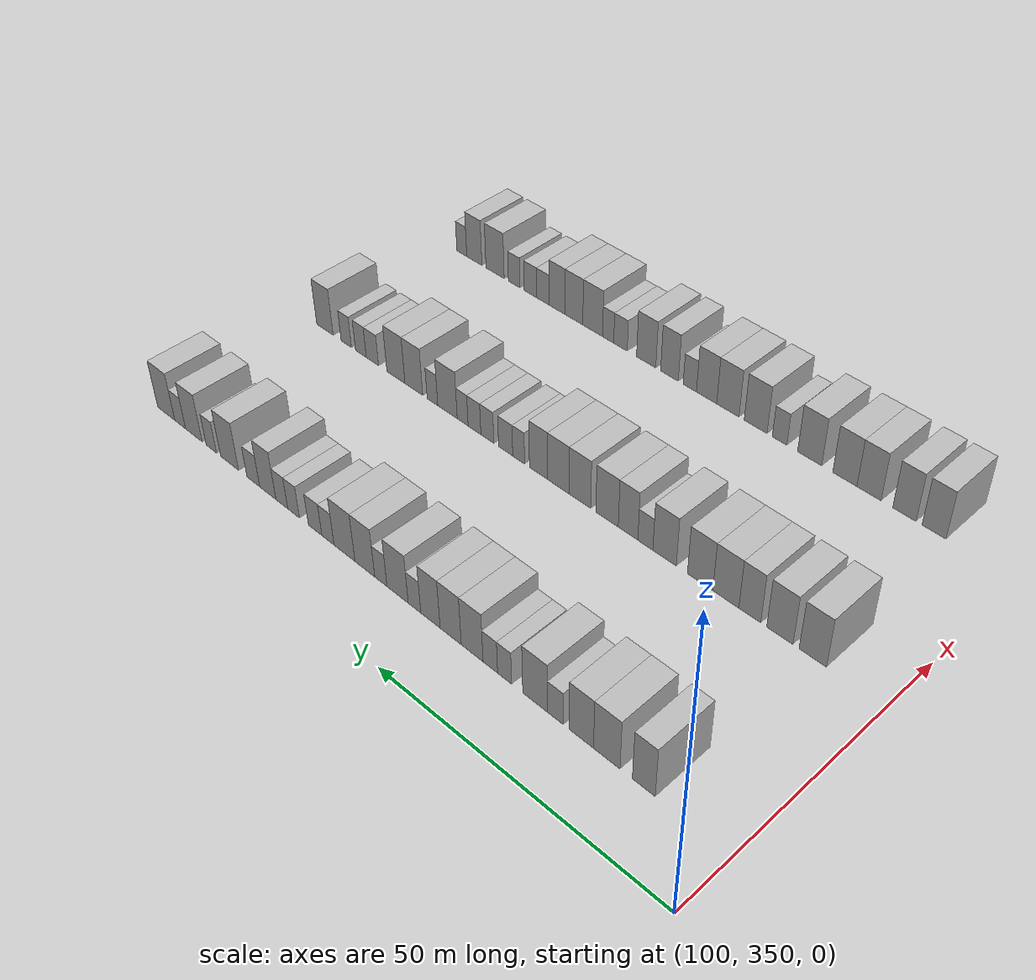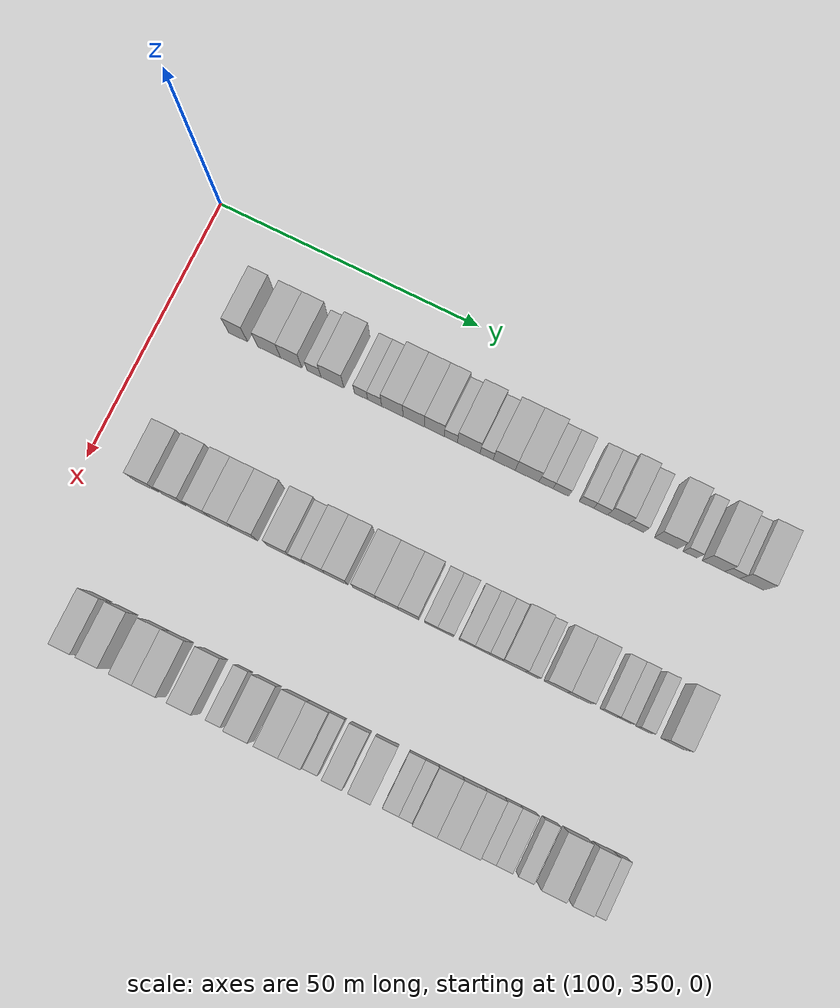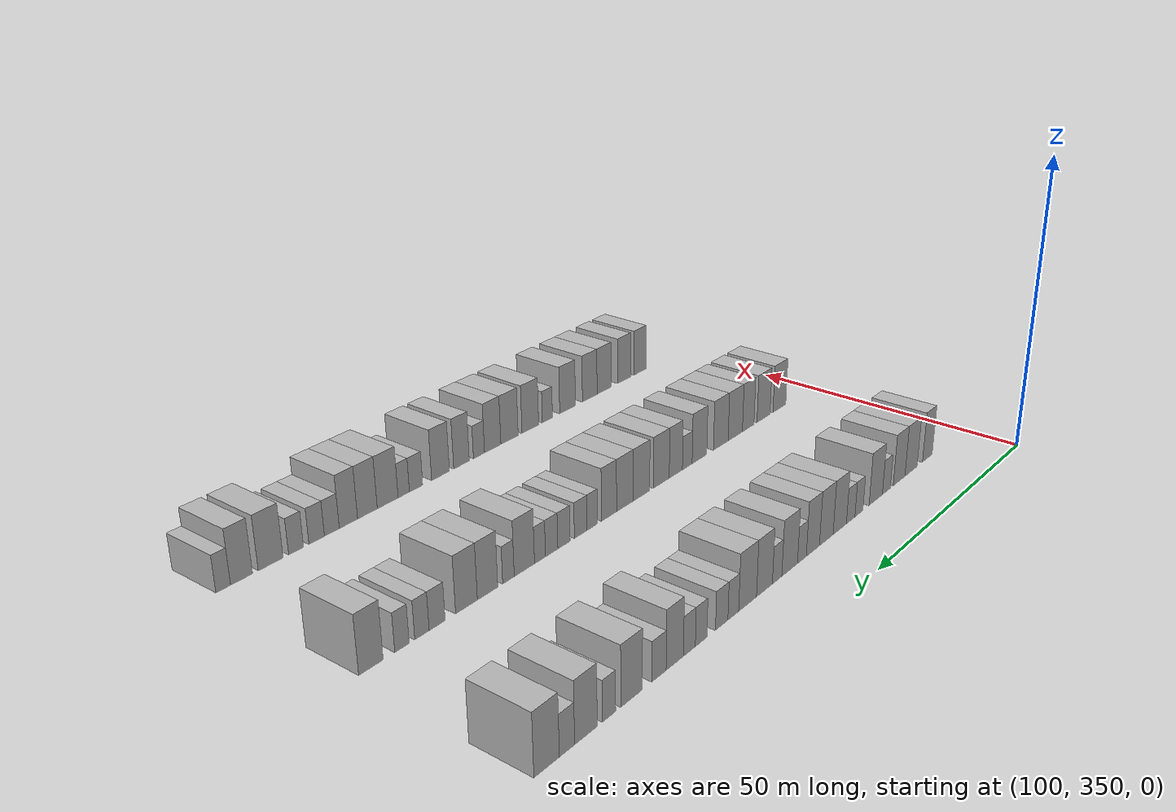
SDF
<sdf version="1.6">
 <world name="default">
  <model name="building_876">
   <static>1</static>
   <pose>115.0000 363.5925 0 0.000000 0.000000 0.000000</pose>
   <link name="link">
    <pose>0 0 4.50 0 0 0</pose>
    <collision name="collision"><geometry><box><size>10.0000 3.6463 9.0000</size></box></geometry></collision>
    <visual name="visual">
     <cast_shadows>0</cast_shadows>
     <geometry><box><size>10.0000 3.6463 9.0000</size></box></geometry>
     <material>
      <script>
       <uri>model://HANNAS_wall/materials/scripts</uri>
       <uri>model://HANNAS_wall/materials/textures</uri>
       <name>vrc/HANNAS_wall</name>
      </script>
     </material>
    </visual>
   </link>
  </model>
  <model name="building_877">
   <static>1</static>
   <pose>115.0000 369.5998 0 0.000000 0.000000 0.000000</pose>
   <link name="link">
    <pose>0 0 4.50 0 0 0</pose>
    <collision name="collision"><geometry><box><size>10.0000 4.3685 9.0000</size></box></geometry></collision>
    <visual name="visual">
     <cast_shadows>0</cast_shadows>
     <geometry><box><size>10.0000 4.3685 9.0000</size></box></geometry>
     <material>
      <script>
       <uri>model://HANNAS_wall/materials/scripts</uri>
       <uri>model://HANNAS_wall/materials/textures</uri>
       <name>vrc/HANNAS_wall</name>
      </script>
     </material>
    </visual>
   </link>
  </model>
  <model name="building_878">
   <static>1</static>
   <pose>115.0000 373.8385 0 0.000000 0.000000 0.000000</pose>
   <link name="link">
    <pose>0 0 4.50 0 0 0</pose>
    <collision name="collision"><geometry><box><size>10.0000 4.1087 9.0000</size></box></geometry></collision>
    <visual name="visual">
     <cast_shadows>0</cast_shadows>
     <geometry><box><size>10.0000 4.1087 9.0000</size></box></geometry>
     <material>
      <script>
       <uri>model://HANNAS_wall/materials/scripts</uri>
       <uri>model://HANNAS_wall/materials/textures</uri>
       <name>vrc/HANNAS_wall</name>
      </script>
     </material>
    </visual>
   </link>
  </model>
  <model name="building_879">
   <static>1</static>
   <pose>115.0000 378.2415 0 0.000000 0.000000 0.000000</pose>
   <link name="link">
    <pose>0 0 3.00 0 0 0</pose>
    <collision name="collision"><geometry><box><size>10.0000 2.6974 6.0000</size></box></geometry></collision>
    <visual name="visual">
     <cast_shadows>0</cast_shadows>
     <geometry><box><size>10.0000 2.6974 6.0000</size></box></geometry>
     <material>
      <script>
       <uri>model://HANNAS_wall/materials/scripts</uri>
       <uri>model://HANNAS_wall/materials/textures</uri>
       <name>vrc/HANNAS_wall</name>
      </script>
     </material>
    </visual>
   </link>
  </model>
  <model name="building_880">
   <static>1</static>
   <pose>115.0000 381.7864 0 0.000000 0.000000 0.000000</pose>
   <link name="link">
    <pose>0 0 4.50 0 0 0</pose>
    <collision name="collision"><geometry><box><size>10.0000 4.3923 9.0000</size></box></geometry></collision>
    <visual name="visual">
     <cast_shadows>0</cast_shadows>
     <geometry><box><size>10.0000 4.3923 9.0000</size></box></geometry>
     <material>
      <script>
       <uri>model://HANNAS_wall/materials/scripts</uri>
       <uri>model://HANNAS_wall/materials/textures</uri>
       <name>vrc/HANNAS_wall</name>
      </script>
     </material>
    </visual>
   </link>
  </model>
  <model name="building_881">
   <static>1</static>
   <pose>115.0000 387.2542 0 0.000000 0.000000 0.000000</pose>
   <link name="link">
    <pose>0 0 3.00 0 0 0</pose>
    <collision name="collision"><geometry><box><size>10.0000 2.5434 6.0000</size></box></geometry></collision>
    <visual name="visual">
     <cast_shadows>0</cast_shadows>
     <geometry><box><size>10.0000 2.5434 6.0000</size></box></geometry>
     <material>
      <script>
       <uri>model://HANNAS_wall/materials/scripts</uri>
       <uri>model://HANNAS_wall/materials/textures</uri>
       <name>vrc/HANNAS_wall</name>
      </script>
     </material>
    </visual>
   </link>
  </model>
  <model name="building_882">
   <static>1</static>
   <pose>115.0000 389.8572 0 0.000000 0.000000 0.000000</pose>
   <link name="link">
    <pose>0 0 3.00 0 0 0</pose>
    <collision name="collision"><geometry><box><size>10.0000 2.6627 6.0000</size></box></geometry></collision>
    <visual name="visual">
     <cast_shadows>0</cast_shadows>
     <geometry><box><size>10.0000 2.6627 6.0000</size></box></geometry>
     <material>
      <script>
       <uri>model://HANNAS_wall/materials/scripts</uri>
       <uri>model://HANNAS_wall/materials/textures</uri>
       <name>vrc/HANNAS_wall</name>
      </script>
     </material>
    </visual>
   </link>
  </model>
  <model name="building_883">
   <static>1</static>
   <pose>115.0000 393.2285 0 0.000000 0.000000 0.000000</pose>
   <link name="link">
    <pose>0 0 4.50 0 0 0</pose>
    <collision name="collision"><geometry><box><size>10.0000 4.0799 9.0000</size></box></geometry></collision>
    <visual name="visual">
     <cast_shadows>0</cast_shadows>
     <geometry><box><size>10.0000 4.0799 9.0000</size></box></geometry>
     <material>
      <script>
       <uri>model://HANNAS_wall/materials/scripts</uri>
       <uri>model://HANNAS_wall/materials/textures</uri>
       <name>vrc/HANNAS_wall</name>
      </script>
     </material>
    </visual>
   </link>
  </model>
  <model name="building_884">
   <static>1</static>
   <pose>115.0000 397.2960 0 0.000000 0.000000 0.000000</pose>
   <link name="link">
    <pose>0 0 4.50 0 0 0</pose>
    <collision name="collision"><geometry><box><size>10.0000 4.0551 9.0000</size></box></geometry></collision>
    <visual name="visual">
     <cast_shadows>0</cast_shadows>
     <geometry><box><size>10.0000 4.0551 9.0000</size></box></geometry>
     <material>
      <script>
       <uri>model://HANNAS_wall/materials/scripts</uri>
       <uri>model://HANNAS_wall/materials/textures</uri>
       <name>vrc/HANNAS_wall</name>
      </script>
     </material>
    </visual>
   </link>
  </model>
  <model name="building_885">
   <static>1</static>
   <pose>115.0000 401.2096 0 0.000000 0.000000 0.000000</pose>
   <link name="link">
    <pose>0 0 4.50 0 0 0</pose>
    <collision name="collision"><geometry><box><size>10.0000 3.7722 9.0000</size></box></geometry></collision>
    <visual name="visual">
     <cast_shadows>0</cast_shadows>
     <geometry><box><size>10.0000 3.7722 9.0000</size></box></geometry>
     <material>
      <script>
       <uri>model://HANNAS_wall/materials/scripts</uri>
       <uri>model://HANNAS_wall/materials/textures</uri>
       <name>vrc/HANNAS_wall</name>
      </script>
     </material>
    </visual>
   </link>
  </model>
  <model name="building_886">
   <static>1</static>
   <pose>115.0000 404.3436 0 0.000000 0.000000 0.000000</pose>
   <link name="link">
    <pose>0 0 3.00 0 0 0</pose>
    <collision name="collision"><geometry><box><size>10.0000 2.4957 6.0000</size></box></geometry></collision>
    <visual name="visual">
     <cast_shadows>0</cast_shadows>
     <geometry><box><size>10.0000 2.4957 6.0000</size></box></geometry>
     <material>
      <script>
       <uri>model://HANNAS_wall/materials/scripts</uri>
       <uri>model://HANNAS_wall/materials/textures</uri>
       <name>vrc/HANNAS_wall</name>
      </script>
     </material>
    </visual>
   </link>
  </model>
  <model name="building_887">
   <static>1</static>
   <pose>115.0000 407.7366 0 0.000000 0.000000 0.000000</pose>
   <link name="link">
    <pose>0 0 4.50 0 0 0</pose>
    <collision name="collision"><geometry><box><size>10.0000 4.2903 9.0000</size></box></geometry></collision>
    <visual name="visual">
     <cast_shadows>0</cast_shadows>
     <geometry><box><size>10.0000 4.2903 9.0000</size></box></geometry>
     <material>
      <script>
       <uri>model://HANNAS_wall/materials/scripts</uri>
       <uri>model://HANNAS_wall/materials/textures</uri>
       <name>vrc/HANNAS_wall</name>
      </script>
     </material>
    </visual>
   </link>
  </model>
  <model name="building_888">
   <static>1</static>
   <pose>115.0000 411.1364 0 0.000000 0.000000 0.000000</pose>
   <link name="link">
    <pose>0 0 3.00 0 0 0</pose>
    <collision name="collision"><geometry><box><size>10.0000 2.5093 6.0000</size></box></geometry></collision>
    <visual name="visual">
     <cast_shadows>0</cast_shadows>
     <geometry><box><size>10.0000 2.5093 6.0000</size></box></geometry>
     <material>
      <script>
       <uri>model://HANNAS_wall/materials/scripts</uri>
       <uri>model://HANNAS_wall/materials/textures</uri>
       <name>vrc/HANNAS_wall</name>
      </script>
     </material>
    </visual>
   </link>
  </model>
  <model name="building_889">
   <static>1</static>
   <pose>115.0000 414.4592 0 0.000000 0.000000 0.000000</pose>
   <link name="link">
    <pose>0 0 4.50 0 0 0</pose>
    <collision name="collision"><geometry><box><size>10.0000 4.1365 9.0000</size></box></geometry></collision>
    <visual name="visual">
     <cast_shadows>0</cast_shadows>
     <geometry><box><size>10.0000 4.1365 9.0000</size></box></geometry>
     <material>
      <script>
       <uri>model://HANNAS_wall/materials/scripts</uri>
       <uri>model://HANNAS_wall/materials/textures</uri>
       <name>vrc/HANNAS_wall</name>
      </script>
     </material>
    </visual>
   </link>
  </model>
  <model name="building_890">
   <static>1</static>
   <pose>115.0000 418.7668 0 0.000000 0.000000 0.000000</pose>
   <link name="link">
    <pose>0 0 4.50 0 0 0</pose>
    <collision name="collision"><geometry><box><size>10.0000 4.4787 9.0000</size></box></geometry></collision>
    <visual name="visual">
     <cast_shadows>0</cast_shadows>
     <geometry><box><size>10.0000 4.4787 9.0000</size></box></geometry>
     <material>
      <script>
       <uri>model://HANNAS_wall/materials/scripts</uri>
       <uri>model://HANNAS_wall/materials/textures</uri>
       <name>vrc/HANNAS_wall</name>
      </script>
     </material>
    </visual>
   </link>
  </model>
  <model name="building_891">
   <static>1</static>
   <pose>115.0000 422.3186 0 0.000000 0.000000 0.000000</pose>
   <link name="link">
    <pose>0 0 3.00 0 0 0</pose>
    <collision name="collision"><geometry><box><size>10.0000 2.6249 6.0000</size></box></geometry></collision>
    <visual name="visual">
     <cast_shadows>0</cast_shadows>
     <geometry><box><size>10.0000 2.6249 6.0000</size></box></geometry>
     <material>
      <script>
       <uri>model://HANNAS_wall/materials/scripts</uri>
       <uri>model://HANNAS_wall/materials/textures</uri>
       <name>vrc/HANNAS_wall</name>
      </script>
     </material>
    </visual>
   </link>
  </model>
  <model name="building_892">
   <static>1</static>
   <pose>115.0000 425.1091 0 0.000000 0.000000 0.000000</pose>
   <link name="link">
    <pose>0 0 3.00 0 0 0</pose>
    <collision name="collision"><geometry><box><size>10.0000 2.9561 6.0000</size></box></geometry></collision>
    <visual name="visual">
     <cast_shadows>0</cast_shadows>
     <geometry><box><size>10.0000 2.9561 6.0000</size></box></geometry>
     <material>
      <script>
       <uri>model://HANNAS_wall/materials/scripts</uri>
       <uri>model://HANNAS_wall/materials/textures</uri>
       <name>vrc/HANNAS_wall</name>
      </script>
     </material>
    </visual>
   </link>
  </model>
  <model name="building_893">
   <static>1</static>
   <pose>115.0000 429.9117 0 0.000000 0.000000 0.000000</pose>
   <link name="link">
    <pose>0 0 3.00 0 0 0</pose>
    <collision name="collision"><geometry><box><size>10.0000 2.6489 6.0000</size></box></geometry></collision>
    <visual name="visual">
     <cast_shadows>0</cast_shadows>
     <geometry><box><size>10.0000 2.6489 6.0000</size></box></geometry>
     <material>
      <script>
       <uri>model://HANNAS_wall/materials/scripts</uri>
       <uri>model://HANNAS_wall/materials/textures</uri>
       <name>vrc/HANNAS_wall</name>
      </script>
     </material>
    </visual>
   </link>
  </model>
  <model name="building_894">
   <static>1</static>
   <pose>115.0000 432.5781 0 0.000000 0.000000 0.000000</pose>
   <link name="link">
    <pose>0 0 3.00 0 0 0</pose>
    <collision name="collision"><geometry><box><size>10.0000 2.6839 6.0000</size></box></geometry></collision>
    <visual name="visual">
     <cast_shadows>0</cast_shadows>
     <geometry><box><size>10.0000 2.6839 6.0000</size></box></geometry>
     <material>
      <script>
       <uri>model://HANNAS_wall/materials/scripts</uri>
       <uri>model://HANNAS_wall/materials/textures</uri>
       <name>vrc/HANNAS_wall</name>
      </script>
     </material>
    </visual>
   </link>
  </model>
  <model name="building_895">
   <static>1</static>
   <pose>115.0000 435.7971 0 0.000000 0.000000 0.000000</pose>
   <link name="link">
    <pose>0 0 4.50 0 0 0</pose>
    <collision name="collision"><geometry><box><size>10.0000 3.7543 9.0000</size></box></geometry></collision>
    <visual name="visual">
     <cast_shadows>0</cast_shadows>
     <geometry><box><size>10.0000 3.7543 9.0000</size></box></geometry>
     <material>
      <script>
       <uri>model://HANNAS_wall/materials/scripts</uri>
       <uri>model://HANNAS_wall/materials/textures</uri>
       <name>vrc/HANNAS_wall</name>
      </script>
     </material>
    </visual>
   </link>
  </model>
  <model name="building_896">
   <static>1</static>
   <pose>115.0000 439.1691 0 0.000000 0.000000 0.000000</pose>
   <link name="link">
    <pose>0 0 3.00 0 0 0</pose>
    <collision name="collision"><geometry><box><size>10.0000 2.9897 6.0000</size></box></geometry></collision>
    <visual name="visual">
     <cast_shadows>0</cast_shadows>
     <geometry><box><size>10.0000 2.9897 6.0000</size></box></geometry>
     <material>
      <script>
       <uri>model://HANNAS_wall/materials/scripts</uri>
       <uri>model://HANNAS_wall/materials/textures</uri>
       <name>vrc/HANNAS_wall</name>
      </script>
     </material>
    </visual>
   </link>
  </model>
  <model name="building_897">
   <static>1</static>
   <pose>115.0000 444.8337 0 0.000000 0.000000 0.000000</pose>
   <link name="link">
    <pose>0 0 4.50 0 0 0</pose>
    <collision name="collision"><geometry><box><size>10.0000 4.3393 9.0000</size></box></geometry></collision>
    <visual name="visual">
     <cast_shadows>0</cast_shadows>
     <geometry><box><size>10.0000 4.3393 9.0000</size></box></geometry>
     <material>
      <script>
       <uri>model://HANNAS_wall/materials/scripts</uri>
       <uri>model://HANNAS_wall/materials/textures</uri>
       <name>vrc/HANNAS_wall</name>
      </script>
     </material>
    </visual>
   </link>
  </model>
  <model name="building_898">
   <static>1</static>
   <pose>115.0000 449.2754 0 0.000000 0.000000 0.000000</pose>
   <link name="link">
    <pose>0 0 3.00 0 0 0</pose>
    <collision name="collision"><geometry><box><size>10.0000 2.5440 6.0000</size></box></geometry></collision>
    <visual name="visual">
     <cast_shadows>0</cast_shadows>
     <geometry><box><size>10.0000 2.5440 6.0000</size></box></geometry>
     <material>
      <script>
       <uri>model://HANNAS_wall/materials/scripts</uri>
       <uri>model://HANNAS_wall/materials/textures</uri>
       <name>vrc/HANNAS_wall</name>
      </script>
     </material>
    </visual>
   </link>
  </model>
  <model name="building_899">
   <static>1</static>
   <pose>115.0000 453.6425 0 0.000000 0.000000 0.000000</pose>
   <link name="link">
    <pose>0 0 4.50 0 0 0</pose>
    <collision name="collision"><geometry><box><size>10.0000 4.1902 9.0000</size></box></geometry></collision>
    <visual name="visual">
     <cast_shadows>0</cast_shadows>
     <geometry><box><size>10.0000 4.1902 9.0000</size></box></geometry>
     <material>
      <script>
       <uri>model://HANNAS_wall/materials/scripts</uri>
       <uri>model://HANNAS_wall/materials/textures</uri>
       <name>vrc/HANNAS_wall</name>
      </script>
     </material>
    </visual>
   </link>
  </model>
  <model name="building_900">
   <static>1</static>
   <pose>115.0000 457.1089 0 0.000000 0.000000 0.000000</pose>
   <link name="link">
    <pose>0 0 3.00 0 0 0</pose>
    <collision name="collision"><geometry><box><size>10.0000 2.7426 6.0000</size></box></geometry></collision>
    <visual name="visual">
     <cast_shadows>0</cast_shadows>
     <geometry><box><size>10.0000 2.7426 6.0000</size></box></geometry>
     <material>
      <script>
       <uri>model://HANNAS_wall/materials/scripts</uri>
       <uri>model://HANNAS_wall/materials/textures</uri>
       <name>vrc/HANNAS_wall</name>
      </script>
     </material>
    </visual>
   </link>
  </model>
  <model name="building_901">
   <static>1</static>
   <pose>115.0000 460.6929 0 0.000000 0.000000 0.000000</pose>
   <link name="link">
    <pose>0 0 4.50 0 0 0</pose>
    <collision name="collision"><geometry><box><size>10.0000 4.4254 9.0000</size></box></geometry></collision>
    <visual name="visual">
     <cast_shadows>0</cast_shadows>
     <geometry><box><size>10.0000 4.4254 9.0000</size></box></geometry>
     <material>
      <script>
       <uri>model://HANNAS_wall/materials/scripts</uri>
       <uri>model://HANNAS_wall/materials/textures</uri>
       <name>vrc/HANNAS_wall</name>
      </script>
     </material>
    </visual>
   </link>
  </model>
  <model name="building_1084">
   <static>1</static>
   <pose>145.0000 361.4874 0 0.000000 0.000000 0.000000</pose>
   <link name="link">
    <pose>0 0 4.50 0 0 0</pose>
    <collision name="collision"><geometry><box><size>10.0000 4.3855 9.0000</size></box></geometry></collision>
    <visual name="visual">
     <cast_shadows>0</cast_shadows>
     <geometry><box><size>10.0000 4.3855 9.0000</size></box></geometry>
     <material>
      <script>
       <uri>model://HANNAS_wall/materials/scripts</uri>
       <uri>model://HANNAS_wall/materials/textures</uri>
       <name>vrc/HANNAS_wall</name>
      </script>
     </material>
    </visual>
   </link>
  </model>
  <model name="building_1085">
   <static>1</static>
   <pose>145.0000 366.8388 0 0.000000 0.000000 0.000000</pose>
   <link name="link">
    <pose>0 0 4.50 0 0 0</pose>
    <collision name="collision"><geometry><box><size>10.0000 4.3173 9.0000</size></box></geometry></collision>
    <visual name="visual">
     <cast_shadows>0</cast_shadows>
     <geometry><box><size>10.0000 4.3173 9.0000</size></box></geometry>
     <material>
      <script>
       <uri>model://HANNAS_wall/materials/scripts</uri>
       <uri>model://HANNAS_wall/materials/textures</uri>
       <name>vrc/HANNAS_wall</name>
      </script>
     </material>
    </visual>
   </link>
  </model>
  <model name="building_1086">
   <static>1</static>
   <pose>145.0000 371.8488 0 0.000000 0.000000 0.000000</pose>
   <link name="link">
    <pose>0 0 4.50 0 0 0</pose>
    <collision name="collision"><geometry><box><size>10.0000 3.7026 9.0000</size></box></geometry></collision>
    <visual name="visual">
     <cast_shadows>0</cast_shadows>
     <geometry><box><size>10.0000 3.7026 9.0000</size></box></geometry>
     <material>
      <script>
       <uri>model://HANNAS_wall/materials/scripts</uri>
       <uri>model://HANNAS_wall/materials/textures</uri>
       <name>vrc/HANNAS_wall</name>
      </script>
     </material>
    </visual>
   </link>
  </model>
  <model name="building_1087">
   <static>1</static>
   <pose>145.0000 375.9446 0 0.000000 0.000000 0.000000</pose>
   <link name="link">
    <pose>0 0 4.50 0 0 0</pose>
    <collision name="collision"><geometry><box><size>10.0000 4.4892 9.0000</size></box></geometry></collision>
    <visual name="visual">
     <cast_shadows>0</cast_shadows>
     <geometry><box><size>10.0000 4.4892 9.0000</size></box></geometry>
     <material>
      <script>
       <uri>model://HANNAS_wall/materials/scripts</uri>
       <uri>model://HANNAS_wall/materials/textures</uri>
       <name>vrc/HANNAS_wall</name>
      </script>
     </material>
    </visual>
   </link>
  </model>
  <model name="building_1088">
   <static>1</static>
   <pose>145.0000 380.4227 0 0.000000 0.000000 0.000000</pose>
   <link name="link">
    <pose>0 0 4.50 0 0 0</pose>
    <collision name="collision"><geometry><box><size>10.0000 4.4668 9.0000</size></box></geometry></collision>
    <visual name="visual">
     <cast_shadows>0</cast_shadows>
     <geometry><box><size>10.0000 4.4668 9.0000</size></box></geometry>
     <material>
      <script>
       <uri>model://HANNAS_wall/materials/scripts</uri>
       <uri>model://HANNAS_wall/materials/textures</uri>
       <name>vrc/HANNAS_wall</name>
      </script>
     </material>
    </visual>
   </link>
  </model>
  <model name="building_1089">
   <static>1</static>
   <pose>145.0000 386.7946 0 0.000000 0.000000 0.000000</pose>
   <link name="link">
    <pose>0 0 4.50 0 0 0</pose>
    <collision name="collision"><geometry><box><size>10.0000 4.2772 9.0000</size></box></geometry></collision>
    <visual name="visual">
     <cast_shadows>0</cast_shadows>
     <geometry><box><size>10.0000 4.2772 9.0000</size></box></geometry>
     <material>
      <script>
       <uri>model://HANNAS_wall/materials/scripts</uri>
       <uri>model://HANNAS_wall/materials/textures</uri>
       <name>vrc/HANNAS_wall</name>
      </script>
     </material>
    </visual>
   </link>
  </model>
  <model name="building_1090">
   <static>1</static>
   <pose>145.0000 390.3215 0 0.000000 0.000000 0.000000</pose>
   <link name="link">
    <pose>0 0 3.00 0 0 0</pose>
    <collision name="collision"><geometry><box><size>10.0000 2.7766 6.0000</size></box></geometry></collision>
    <visual name="visual">
     <cast_shadows>0</cast_shadows>
     <geometry><box><size>10.0000 2.7766 6.0000</size></box></geometry>
     <material>
      <script>
       <uri>model://HANNAS_wall/materials/scripts</uri>
       <uri>model://HANNAS_wall/materials/textures</uri>
       <name>vrc/HANNAS_wall</name>
      </script>
     </material>
    </visual>
   </link>
  </model>
  <model name="building_1091">
   <static>1</static>
   <pose>145.0000 393.5480 0 0.000000 0.000000 0.000000</pose>
   <link name="link">
    <pose>0 0 4.50 0 0 0</pose>
    <collision name="collision"><geometry><box><size>10.0000 3.6765 9.0000</size></box></geometry></collision>
    <visual name="visual">
     <cast_shadows>0</cast_shadows>
     <geometry><box><size>10.0000 3.6765 9.0000</size></box></geometry>
     <material>
      <script>
       <uri>model://HANNAS_wall/materials/scripts</uri>
       <uri>model://HANNAS_wall/materials/textures</uri>
       <name>vrc/HANNAS_wall</name>
      </script>
     </material>
    </visual>
   </link>
  </model>
  <model name="building_1092">
   <static>1</static>
   <pose>145.0000 397.5365 0 0.000000 0.000000 0.000000</pose>
   <link name="link">
    <pose>0 0 4.50 0 0 0</pose>
    <collision name="collision"><geometry><box><size>10.0000 4.3003 9.0000</size></box></geometry></collision>
    <visual name="visual">
     <cast_shadows>0</cast_shadows>
     <geometry><box><size>10.0000 4.3003 9.0000</size></box></geometry>
     <material>
      <script>
       <uri>model://HANNAS_wall/materials/scripts</uri>
       <uri>model://HANNAS_wall/materials/textures</uri>
       <name>vrc/HANNAS_wall</name>
      </script>
     </material>
    </visual>
   </link>
  </model>
  <model name="building_1093">
   <static>1</static>
   <pose>145.0000 402.8193 0 0.000000 0.000000 0.000000</pose>
   <link name="link">
    <pose>0 0 4.50 0 0 0</pose>
    <collision name="collision"><geometry><box><size>10.0000 4.2653 9.0000</size></box></geometry></collision>
    <visual name="visual">
     <cast_shadows>0</cast_shadows>
     <geometry><box><size>10.0000 4.2653 9.0000</size></box></geometry>
     <material>
      <script>
       <uri>model://HANNAS_wall/materials/scripts</uri>
       <uri>model://HANNAS_wall/materials/textures</uri>
       <name>vrc/HANNAS_wall</name>
      </script>
     </material>
    </visual>
   </link>
  </model>
  <model name="building_1094">
   <static>1</static>
   <pose>145.0000 407.0892 0 0.000000 0.000000 0.000000</pose>
   <link name="link">
    <pose>0 0 4.50 0 0 0</pose>
    <collision name="collision"><geometry><box><size>10.0000 4.2747 9.0000</size></box></geometry></collision>
    <visual name="visual">
     <cast_shadows>0</cast_shadows>
     <geometry><box><size>10.0000 4.2747 9.0000</size></box></geometry>
     <material>
      <script>
       <uri>model://HANNAS_wall/materials/scripts</uri>
       <uri>model://HANNAS_wall/materials/textures</uri>
       <name>vrc/HANNAS_wall</name>
      </script>
     </material>
    </visual>
   </link>
  </model>
  <model name="building_1095">
   <static>1</static>
   <pose>145.0000 411.0954 0 0.000000 0.000000 0.000000</pose>
   <link name="link">
    <pose>0 0 4.50 0 0 0</pose>
    <collision name="collision"><geometry><box><size>10.0000 3.7377 9.0000</size></box></geometry></collision>
    <visual name="visual">
     <cast_shadows>0</cast_shadows>
     <geometry><box><size>10.0000 3.7377 9.0000</size></box></geometry>
     <material>
      <script>
       <uri>model://HANNAS_wall/materials/scripts</uri>
       <uri>model://HANNAS_wall/materials/textures</uri>
       <name>vrc/HANNAS_wall</name>
      </script>
     </material>
    </visual>
   </link>
  </model>
  <model name="building_1096">
   <static>1</static>
   <pose>145.0000 415.2012 0 0.000000 0.000000 0.000000</pose>
   <link name="link">
    <pose>0 0 3.00 0 0 0</pose>
    <collision name="collision"><geometry><box><size>10.0000 2.4739 6.0000</size></box></geometry></collision>
    <visual name="visual">
     <cast_shadows>0</cast_shadows>
     <geometry><box><size>10.0000 2.4739 6.0000</size></box></geometry>
     <material>
      <script>
       <uri>model://HANNAS_wall/materials/scripts</uri>
       <uri>model://HANNAS_wall/materials/textures</uri>
       <name>vrc/HANNAS_wall</name>
      </script>
     </material>
    </visual>
   </link>
  </model>
  <model name="building_1097">
   <static>1</static>
   <pose>145.0000 417.9320 0 0.000000 0.000000 0.000000</pose>
   <link name="link">
    <pose>0 0 3.00 0 0 0</pose>
    <collision name="collision"><geometry><box><size>10.0000 2.9876 6.0000</size></box></geometry></collision>
    <visual name="visual">
     <cast_shadows>0</cast_shadows>
     <geometry><box><size>10.0000 2.9876 6.0000</size></box></geometry>
     <material>
      <script>
       <uri>model://HANNAS_wall/materials/scripts</uri>
       <uri>model://HANNAS_wall/materials/textures</uri>
       <name>vrc/HANNAS_wall</name>
      </script>
     </material>
    </visual>
   </link>
  </model>
  <model name="building_1098">
   <static>1</static>
   <pose>145.0000 421.8223 0 0.000000 0.000000 0.000000</pose>
   <link name="link">
    <pose>0 0 3.00 0 0 0</pose>
    <collision name="collision"><geometry><box><size>10.0000 2.7931 6.0000</size></box></geometry></collision>
    <visual name="visual">
     <cast_shadows>0</cast_shadows>
     <geometry><box><size>10.0000 2.7931 6.0000</size></box></geometry>
     <material>
      <script>
       <uri>model://HANNAS_wall/materials/scripts</uri>
       <uri>model://HANNAS_wall/materials/textures</uri>
       <name>vrc/HANNAS_wall</name>
      </script>
     </material>
    </visual>
   </link>
  </model>
  <model name="building_1099">
   <static>1</static>
   <pose>145.0000 424.6042 0 0.000000 0.000000 0.000000</pose>
   <link name="link">
    <pose>0 0 3.00 0 0 0</pose>
    <collision name="collision"><geometry><box><size>10.0000 2.7707 6.0000</size></box></geometry></collision>
    <visual name="visual">
     <cast_shadows>0</cast_shadows>
     <geometry><box><size>10.0000 2.7707 6.0000</size></box></geometry>
     <material>
      <script>
       <uri>model://HANNAS_wall/materials/scripts</uri>
       <uri>model://HANNAS_wall/materials/textures</uri>
       <name>vrc/HANNAS_wall</name>
      </script>
     </material>
    </visual>
   </link>
  </model>
  <model name="building_1100">
   <static>1</static>
   <pose>145.0000 427.1931 0 0.000000 0.000000 0.000000</pose>
   <link name="link">
    <pose>0 0 3.00 0 0 0</pose>
    <collision name="collision"><geometry><box><size>10.0000 2.4070 6.0000</size></box></geometry></collision>
    <visual name="visual">
     <cast_shadows>0</cast_shadows>
     <geometry><box><size>10.0000 2.4070 6.0000</size></box></geometry>
     <material>
      <script>
       <uri>model://HANNAS_wall/materials/scripts</uri>
       <uri>model://HANNAS_wall/materials/textures</uri>
       <name>vrc/HANNAS_wall</name>
      </script>
     </material>
    </visual>
   </link>
  </model>
  <model name="building_1101">
   <static>1</static>
   <pose>145.0000 430.5678 0 0.000000 0.000000 0.000000</pose>
   <link name="link">
    <pose>0 0 4.50 0 0 0</pose>
    <collision name="collision"><geometry><box><size>10.0000 4.3424 9.0000</size></box></geometry></collision>
    <visual name="visual">
     <cast_shadows>0</cast_shadows>
     <geometry><box><size>10.0000 4.3424 9.0000</size></box></geometry>
     <material>
      <script>
       <uri>model://HANNAS_wall/materials/scripts</uri>
       <uri>model://HANNAS_wall/materials/textures</uri>
       <name>vrc/HANNAS_wall</name>
      </script>
     </material>
    </visual>
   </link>
  </model>
  <model name="building_1102">
   <static>1</static>
   <pose>145.0000 433.9475 0 0.000000 0.000000 0.000000</pose>
   <link name="link">
    <pose>0 0 3.00 0 0 0</pose>
    <collision name="collision"><geometry><box><size>10.0000 2.4169 6.0000</size></box></geometry></collision>
    <visual name="visual">
     <cast_shadows>0</cast_shadows>
     <geometry><box><size>10.0000 2.4169 6.0000</size></box></geometry>
     <material>
      <script>
       <uri>model://HANNAS_wall/materials/scripts</uri>
       <uri>model://HANNAS_wall/materials/textures</uri>
       <name>vrc/HANNAS_wall</name>
      </script>
     </material>
    </visual>
   </link>
  </model>
  <model name="building_1103">
   <static>1</static>
   <pose>145.0000 438.2127 0 0.000000 0.000000 0.000000</pose>
   <link name="link">
    <pose>0 0 4.50 0 0 0</pose>
    <collision name="collision"><geometry><box><size>10.0000 4.1137 9.0000</size></box></geometry></collision>
    <visual name="visual">
     <cast_shadows>0</cast_shadows>
     <geometry><box><size>10.0000 4.1137 9.0000</size></box></geometry>
     <material>
      <script>
       <uri>model://HANNAS_wall/materials/scripts</uri>
       <uri>model://HANNAS_wall/materials/textures</uri>
       <name>vrc/HANNAS_wall</name>
      </script>
     </material>
    </visual>
   </link>
  </model>
  <model name="building_1104">
   <static>1</static>
   <pose>145.0000 442.3911 0 0.000000 0.000000 0.000000</pose>
   <link name="link">
    <pose>0 0 4.50 0 0 0</pose>
    <collision name="collision"><geometry><box><size>10.0000 4.2430 9.0000</size></box></geometry></collision>
    <visual name="visual">
     <cast_shadows>0</cast_shadows>
     <geometry><box><size>10.0000 4.2430 9.0000</size></box></geometry>
     <material>
      <script>
       <uri>model://HANNAS_wall/materials/scripts</uri>
       <uri>model://HANNAS_wall/materials/textures</uri>
       <name>vrc/HANNAS_wall</name>
      </script>
     </material>
    </visual>
   </link>
  </model>
  <model name="building_1105">
   <static>1</static>
   <pose>145.0000 447.9962 0 0.000000 0.000000 0.000000</pose>
   <link name="link">
    <pose>0 0 3.00 0 0 0</pose>
    <collision name="collision"><geometry><box><size>10.0000 2.9674 6.0000</size></box></geometry></collision>
    <visual name="visual">
     <cast_shadows>0</cast_shadows>
     <geometry><box><size>10.0000 2.9674 6.0000</size></box></geometry>
     <material>
      <script>
       <uri>model://HANNAS_wall/materials/scripts</uri>
       <uri>model://HANNAS_wall/materials/textures</uri>
       <name>vrc/HANNAS_wall</name>
      </script>
     </material>
    </visual>
   </link>
  </model>
  <model name="building_1106">
   <static>1</static>
   <pose>145.0000 450.7890 0 0.000000 0.000000 0.000000</pose>
   <link name="link">
    <pose>0 0 3.00 0 0 0</pose>
    <collision name="collision"><geometry><box><size>10.0000 2.6182 6.0000</size></box></geometry></collision>
    <visual name="visual">
     <cast_shadows>0</cast_shadows>
     <geometry><box><size>10.0000 2.6182 6.0000</size></box></geometry>
     <material>
      <script>
       <uri>model://HANNAS_wall/materials/scripts</uri>
       <uri>model://HANNAS_wall/materials/textures</uri>
       <name>vrc/HANNAS_wall</name>
      </script>
     </material>
    </visual>
   </link>
  </model>
  <model name="building_1107">
   <static>1</static>
   <pose>145.0000 454.3726 0 0.000000 0.000000 0.000000</pose>
   <link name="link">
    <pose>0 0 3.00 0 0 0</pose>
    <collision name="collision"><geometry><box><size>10.0000 2.5489 6.0000</size></box></geometry></collision>
    <visual name="visual">
     <cast_shadows>0</cast_shadows>
     <geometry><box><size>10.0000 2.5489 6.0000</size></box></geometry>
     <material>
      <script>
       <uri>model://HANNAS_wall/materials/scripts</uri>
       <uri>model://HANNAS_wall/materials/textures</uri>
       <name>vrc/HANNAS_wall</name>
      </script>
     </material>
    </visual>
   </link>
  </model>
  <model name="building_1108">
   <static>1</static>
   <pose>145.0000 459.7182 0 0.000000 0.000000 0.000000</pose>
   <link name="link">
    <pose>0 0 4.50 0 0 0</pose>
    <collision name="collision"><geometry><box><size>10.0000 4.1424 9.0000</size></box></geometry></collision>
    <visual name="visual">
     <cast_shadows>0</cast_shadows>
     <geometry><box><size>10.0000 4.1424 9.0000</size></box></geometry>
     <material>
      <script>
       <uri>model://HANNAS_wall/materials/scripts</uri>
       <uri>model://HANNAS_wall/materials/textures</uri>
       <name>vrc/HANNAS_wall</name>
      </script>
     </material>
    </visual>
   </link>
  </model>
  <model name="building_1314">
   <static>1</static>
   <pose>175.0000 363.3301 0 0.000000 0.000000 0.000000</pose>
   <link name="link">
    <pose>0 0 4.50 0 0 0</pose>
    <collision name="collision"><geometry><box><size>10.0000 3.9470 9.0000</size></box></geometry></collision>
    <visual name="visual">
     <cast_shadows>0</cast_shadows>
     <geometry><box><size>10.0000 3.9470 9.0000</size></box></geometry>
     <material>
      <script>
       <uri>model://HANNAS_wall/materials/scripts</uri>
       <uri>model://HANNAS_wall/materials/textures</uri>
       <name>vrc/HANNAS_wall</name>
      </script>
     </material>
    </visual>
   </link>
  </model>
  <model name="building_1315">
   <static>1</static>
   <pose>175.0000 368.2827 0 0.000000 0.000000 0.000000</pose>
   <link name="link">
    <pose>0 0 4.50 0 0 0</pose>
    <collision name="collision"><geometry><box><size>10.0000 3.9582 9.0000</size></box></geometry></collision>
    <visual name="visual">
     <cast_shadows>0</cast_shadows>
     <geometry><box><size>10.0000 3.9582 9.0000</size></box></geometry>
     <material>
      <script>
       <uri>model://HANNAS_wall/materials/scripts</uri>
       <uri>model://HANNAS_wall/materials/textures</uri>
       <name>vrc/HANNAS_wall</name>
      </script>
     </material>
    </visual>
   </link>
  </model>
  <model name="building_1316">
   <static>1</static>
   <pose>175.0000 374.3710 0 0.000000 0.000000 0.000000</pose>
   <link name="link">
    <pose>0 0 4.50 0 0 0</pose>
    <collision name="collision"><geometry><box><size>10.0000 4.2183 9.0000</size></box></geometry></collision>
    <visual name="visual">
     <cast_shadows>0</cast_shadows>
     <geometry><box><size>10.0000 4.2183 9.0000</size></box></geometry>
     <material>
      <script>
       <uri>model://HANNAS_wall/materials/scripts</uri>
       <uri>model://HANNAS_wall/materials/textures</uri>
       <name>vrc/HANNAS_wall</name>
      </script>
     </material>
    </visual>
   </link>
  </model>
  <model name="building_1317">
   <static>1</static>
   <pose>175.0000 378.6201 0 0.000000 0.000000 0.000000</pose>
   <link name="link">
    <pose>0 0 4.50 0 0 0</pose>
    <collision name="collision"><geometry><box><size>10.0000 4.2800 9.0000</size></box></geometry></collision>
    <visual name="visual">
     <cast_shadows>0</cast_shadows>
     <geometry><box><size>10.0000 4.2800 9.0000</size></box></geometry>
     <material>
      <script>
       <uri>model://HANNAS_wall/materials/scripts</uri>
       <uri>model://HANNAS_wall/materials/textures</uri>
       <name>vrc/HANNAS_wall</name>
      </script>
     </material>
    </visual>
   </link>
  </model>
  <model name="building_1318">
   <static>1</static>
   <pose>175.0000 384.9660 0 0.000000 0.000000 0.000000</pose>
   <link name="link">
    <pose>0 0 4.50 0 0 0</pose>
    <collision name="collision"><geometry><box><size>10.0000 4.4117 9.0000</size></box></geometry></collision>
    <visual name="visual">
     <cast_shadows>0</cast_shadows>
     <geometry><box><size>10.0000 4.4117 9.0000</size></box></geometry>
     <material>
      <script>
       <uri>model://HANNAS_wall/materials/scripts</uri>
       <uri>model://HANNAS_wall/materials/textures</uri>
       <name>vrc/HANNAS_wall</name>
      </script>
     </material>
    </visual>
   </link>
  </model>
  <model name="building_1319">
   <static>1</static>
   <pose>175.0000 390.5384 0 0.000000 0.000000 0.000000</pose>
   <link name="link">
    <pose>0 0 3.00 0 0 0</pose>
    <collision name="collision"><geometry><box><size>10.0000 2.7331 6.0000</size></box></geometry></collision>
    <visual name="visual">
     <cast_shadows>0</cast_shadows>
     <geometry><box><size>10.0000 2.7331 6.0000</size></box></geometry>
     <material>
      <script>
       <uri>model://HANNAS_wall/materials/scripts</uri>
       <uri>model://HANNAS_wall/materials/textures</uri>
       <name>vrc/HANNAS_wall</name>
      </script>
     </material>
    </visual>
   </link>
  </model>
  <model name="building_1320">
   <static>1</static>
   <pose>175.0000 395.0941 0 0.000000 0.000000 0.000000</pose>
   <link name="link">
    <pose>0 0 4.50 0 0 0</pose>
    <collision name="collision"><geometry><box><size>10.0000 4.3784 9.0000</size></box></geometry></collision>
    <visual name="visual">
     <cast_shadows>0</cast_shadows>
     <geometry><box><size>10.0000 4.3784 9.0000</size></box></geometry>
     <material>
      <script>
       <uri>model://HANNAS_wall/materials/scripts</uri>
       <uri>model://HANNAS_wall/materials/textures</uri>
       <name>vrc/HANNAS_wall</name>
      </script>
     </material>
    </visual>
   </link>
  </model>
  <model name="building_1321">
   <static>1</static>
   <pose>175.0000 400.4828 0 0.000000 0.000000 0.000000</pose>
   <link name="link">
    <pose>0 0 4.50 0 0 0</pose>
    <collision name="collision"><geometry><box><size>10.0000 4.3989 9.0000</size></box></geometry></collision>
    <visual name="visual">
     <cast_shadows>0</cast_shadows>
     <geometry><box><size>10.0000 4.3989 9.0000</size></box></geometry>
     <material>
      <script>
       <uri>model://HANNAS_wall/materials/scripts</uri>
       <uri>model://HANNAS_wall/materials/textures</uri>
       <name>vrc/HANNAS_wall</name>
      </script>
     </material>
    </visual>
   </link>
  </model>
  <model name="building_1322">
   <static>1</static>
   <pose>175.0000 404.7041 0 0.000000 0.000000 0.000000</pose>
   <link name="link">
    <pose>0 0 4.50 0 0 0</pose>
    <collision name="collision"><geometry><box><size>10.0000 4.0436 9.0000</size></box></geometry></collision>
    <visual name="visual">
     <cast_shadows>0</cast_shadows>
     <geometry><box><size>10.0000 4.0436 9.0000</size></box></geometry>
     <material>
      <script>
       <uri>model://HANNAS_wall/materials/scripts</uri>
       <uri>model://HANNAS_wall/materials/textures</uri>
       <name>vrc/HANNAS_wall</name>
      </script>
     </material>
    </visual>
   </link>
  </model>
  <model name="building_1323">
   <static>1</static>
   <pose>175.0000 408.0730 0 0.000000 0.000000 0.000000</pose>
   <link name="link">
    <pose>0 0 3.00 0 0 0</pose>
    <collision name="collision"><geometry><box><size>10.0000 2.6942 6.0000</size></box></geometry></collision>
    <visual name="visual">
     <cast_shadows>0</cast_shadows>
     <geometry><box><size>10.0000 2.6942 6.0000</size></box></geometry>
     <material>
      <script>
       <uri>model://HANNAS_wall/materials/scripts</uri>
       <uri>model://HANNAS_wall/materials/textures</uri>
       <name>vrc/HANNAS_wall</name>
      </script>
     </material>
    </visual>
   </link>
  </model>
  <model name="building_1324">
   <static>1</static>
   <pose>175.0000 412.2509 0 0.000000 0.000000 0.000000</pose>
   <link name="link">
    <pose>0 0 4.50 0 0 0</pose>
    <collision name="collision"><geometry><box><size>10.0000 3.6616 9.0000</size></box></geometry></collision>
    <visual name="visual">
     <cast_shadows>0</cast_shadows>
     <geometry><box><size>10.0000 3.6616 9.0000</size></box></geometry>
     <material>
      <script>
       <uri>model://HANNAS_wall/materials/scripts</uri>
       <uri>model://HANNAS_wall/materials/textures</uri>
       <name>vrc/HANNAS_wall</name>
      </script>
     </material>
    </visual>
   </link>
  </model>
  <model name="building_1325">
   <static>1</static>
   <pose>175.0000 417.1099 0 0.000000 0.000000 0.000000</pose>
   <link name="link">
    <pose>0 0 4.50 0 0 0</pose>
    <collision name="collision"><geometry><box><size>10.0000 4.0564 9.0000</size></box></geometry></collision>
    <visual name="visual">
     <cast_shadows>0</cast_shadows>
     <geometry><box><size>10.0000 4.0564 9.0000</size></box></geometry>
     <material>
      <script>
       <uri>model://HANNAS_wall/materials/scripts</uri>
       <uri>model://HANNAS_wall/materials/textures</uri>
       <name>vrc/HANNAS_wall</name>
      </script>
     </material>
    </visual>
   </link>
  </model>
  <model name="building_1326">
   <static>1</static>
   <pose>175.0000 422.5984 0 0.000000 0.000000 0.000000</pose>
   <link name="link">
    <pose>0 0 3.00 0 0 0</pose>
    <collision name="collision"><geometry><box><size>10.0000 2.9205 6.0000</size></box></geometry></collision>
    <visual name="visual">
     <cast_shadows>0</cast_shadows>
     <geometry><box><size>10.0000 2.9205 6.0000</size></box></geometry>
     <material>
      <script>
       <uri>model://HANNAS_wall/materials/scripts</uri>
       <uri>model://HANNAS_wall/materials/textures</uri>
       <name>vrc/HANNAS_wall</name>
      </script>
     </material>
    </visual>
   </link>
  </model>
  <model name="building_1327">
   <static>1</static>
   <pose>175.0000 425.2781 0 0.000000 0.000000 0.000000</pose>
   <link name="link">
    <pose>0 0 3.00 0 0 0</pose>
    <collision name="collision"><geometry><box><size>10.0000 2.4391 6.0000</size></box></geometry></collision>
    <visual name="visual">
     <cast_shadows>0</cast_shadows>
     <geometry><box><size>10.0000 2.4391 6.0000</size></box></geometry>
     <material>
      <script>
       <uri>model://HANNAS_wall/materials/scripts</uri>
       <uri>model://HANNAS_wall/materials/textures</uri>
       <name>vrc/HANNAS_wall</name>
      </script>
     </material>
    </visual>
   </link>
  </model>
  <model name="building_1328">
   <static>1</static>
   <pose>175.0000 428.6890 0 0.000000 0.000000 0.000000</pose>
   <link name="link">
    <pose>0 0 4.50 0 0 0</pose>
    <collision name="collision"><geometry><box><size>10.0000 4.3826 9.0000</size></box></geometry></collision>
    <visual name="visual">
     <cast_shadows>0</cast_shadows>
     <geometry><box><size>10.0000 4.3826 9.0000</size></box></geometry>
     <material>
      <script>
       <uri>model://HANNAS_wall/materials/scripts</uri>
       <uri>model://HANNAS_wall/materials/textures</uri>
       <name>vrc/HANNAS_wall</name>
      </script>
     </material>
    </visual>
   </link>
  </model>
  <model name="building_1329">
   <static>1</static>
   <pose>175.0000 432.8947 0 0.000000 0.000000 0.000000</pose>
   <link name="link">
    <pose>0 0 4.50 0 0 0</pose>
    <collision name="collision"><geometry><box><size>10.0000 4.0288 9.0000</size></box></geometry></collision>
    <visual name="visual">
     <cast_shadows>0</cast_shadows>
     <geometry><box><size>10.0000 4.0288 9.0000</size></box></geometry>
     <material>
      <script>
       <uri>model://HANNAS_wall/materials/scripts</uri>
       <uri>model://HANNAS_wall/materials/textures</uri>
       <name>vrc/HANNAS_wall</name>
      </script>
     </material>
    </visual>
   </link>
  </model>
  <model name="building_1330">
   <static>1</static>
   <pose>175.0000 436.7280 0 0.000000 0.000000 0.000000</pose>
   <link name="link">
    <pose>0 0 4.50 0 0 0</pose>
    <collision name="collision"><geometry><box><size>10.0000 3.6379 9.0000</size></box></geometry></collision>
    <visual name="visual">
     <cast_shadows>0</cast_shadows>
     <geometry><box><size>10.0000 3.6379 9.0000</size></box></geometry>
     <material>
      <script>
       <uri>model://HANNAS_wall/materials/scripts</uri>
       <uri>model://HANNAS_wall/materials/textures</uri>
       <name>vrc/HANNAS_wall</name>
      </script>
     </material>
    </visual>
   </link>
  </model>
  <model name="building_1331">
   <static>1</static>
   <pose>175.0000 439.9902 0 0.000000 0.000000 0.000000</pose>
   <link name="link">
    <pose>0 0 3.00 0 0 0</pose>
    <collision name="collision"><geometry><box><size>10.0000 2.8866 6.0000</size></box></geometry></collision>
    <visual name="visual">
     <cast_shadows>0</cast_shadows>
     <geometry><box><size>10.0000 2.8866 6.0000</size></box></geometry>
     <material>
      <script>
       <uri>model://HANNAS_wall/materials/scripts</uri>
       <uri>model://HANNAS_wall/materials/textures</uri>
       <name>vrc/HANNAS_wall</name>
      </script>
     </material>
    </visual>
   </link>
  </model>
  <model name="building_1332">
   <static>1</static>
   <pose>175.0000 442.9078 0 0.000000 0.000000 0.000000</pose>
   <link name="link">
    <pose>0 0 3.00 0 0 0</pose>
    <collision name="collision"><geometry><box><size>10.0000 2.9486 6.0000</size></box></geometry></collision>
    <visual name="visual">
     <cast_shadows>0</cast_shadows>
     <geometry><box><size>10.0000 2.9486 6.0000</size></box></geometry>
     <material>
      <script>
       <uri>model://HANNAS_wall/materials/scripts</uri>
       <uri>model://HANNAS_wall/materials/textures</uri>
       <name>vrc/HANNAS_wall</name>
      </script>
     </material>
    </visual>
   </link>
  </model>
  <model name="building_1333">
   <static>1</static>
   <pose>175.0000 446.7626 0 0.000000 0.000000 0.000000</pose>
   <link name="link">
    <pose>0 0 3.00 0 0 0</pose>
    <collision name="collision"><geometry><box><size>10.0000 2.7611 6.0000</size></box></geometry></collision>
    <visual name="visual">
     <cast_shadows>0</cast_shadows>
     <geometry><box><size>10.0000 2.7611 6.0000</size></box></geometry>
     <material>
      <script>
       <uri>model://HANNAS_wall/materials/scripts</uri>
       <uri>model://HANNAS_wall/materials/textures</uri>
       <name>vrc/HANNAS_wall</name>
      </script>
     </material>
    </visual>
   </link>
  </model>
  <model name="building_1334">
   <static>1</static>
   <pose>175.0000 451.3626 0 0.000000 0.000000 0.000000</pose>
   <link name="link">
    <pose>0 0 4.50 0 0 0</pose>
    <collision name="collision"><geometry><box><size>10.0000 4.4389 9.0000</size></box></geometry></collision>
    <visual name="visual">
     <cast_shadows>0</cast_shadows>
     <geometry><box><size>10.0000 4.4389 9.0000</size></box></geometry>
     <material>
      <script>
       <uri>model://HANNAS_wall/materials/scripts</uri>
       <uri>model://HANNAS_wall/materials/textures</uri>
       <name>vrc/HANNAS_wall</name>
      </script>
     </material>
    </visual>
   </link>
  </model>
  <model name="building_1335">
   <static>1</static>
   <pose>175.0000 456.4619 0 0.000000 0.000000 0.000000</pose>
   <link name="link">
    <pose>0 0 4.50 0 0 0</pose>
    <collision name="collision"><geometry><box><size>10.0000 3.7596 9.0000</size></box></geometry></collision>
    <visual name="visual">
     <cast_shadows>0</cast_shadows>
     <geometry><box><size>10.0000 3.7596 9.0000</size></box></geometry>
     <material>
      <script>
       <uri>model://HANNAS_wall/materials/scripts</uri>
       <uri>model://HANNAS_wall/materials/textures</uri>
       <name>vrc/HANNAS_wall</name>
      </script>
     </material>
    </visual>
   </link>
  </model>
  <model name="building_1336">
   <static>1</static>
   <pose>175.0000 459.5776 0 0.000000 0.000000 0.000000</pose>
   <link name="link">
    <pose>0 0 3.00 0 0 0</pose>
    <collision name="collision"><geometry><box><size>10.0000 2.4717 6.0000</size></box></geometry></collision>
    <visual name="visual">
     <cast_shadows>0</cast_shadows>
     <geometry><box><size>10.0000 2.4717 6.0000</size></box></geometry>
     <material>
      <script>
       <uri>model://HANNAS_wall/materials/scripts</uri>
       <uri>model://HANNAS_wall/materials/textures</uri>
       <name>vrc/HANNAS_wall</name>
      </script>
     </material>
    </visual>
   </link>
  </model>
 </world>
</sdf>
